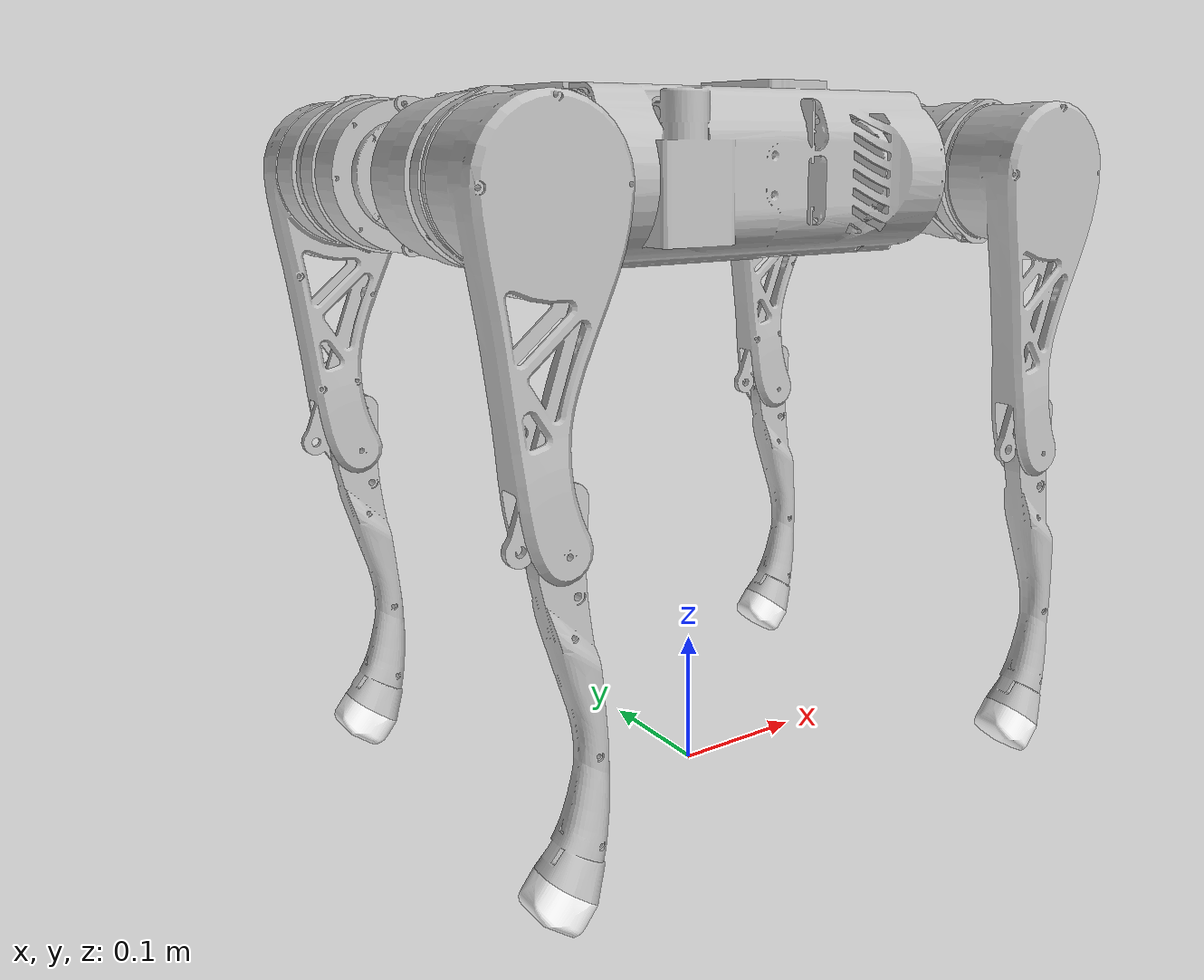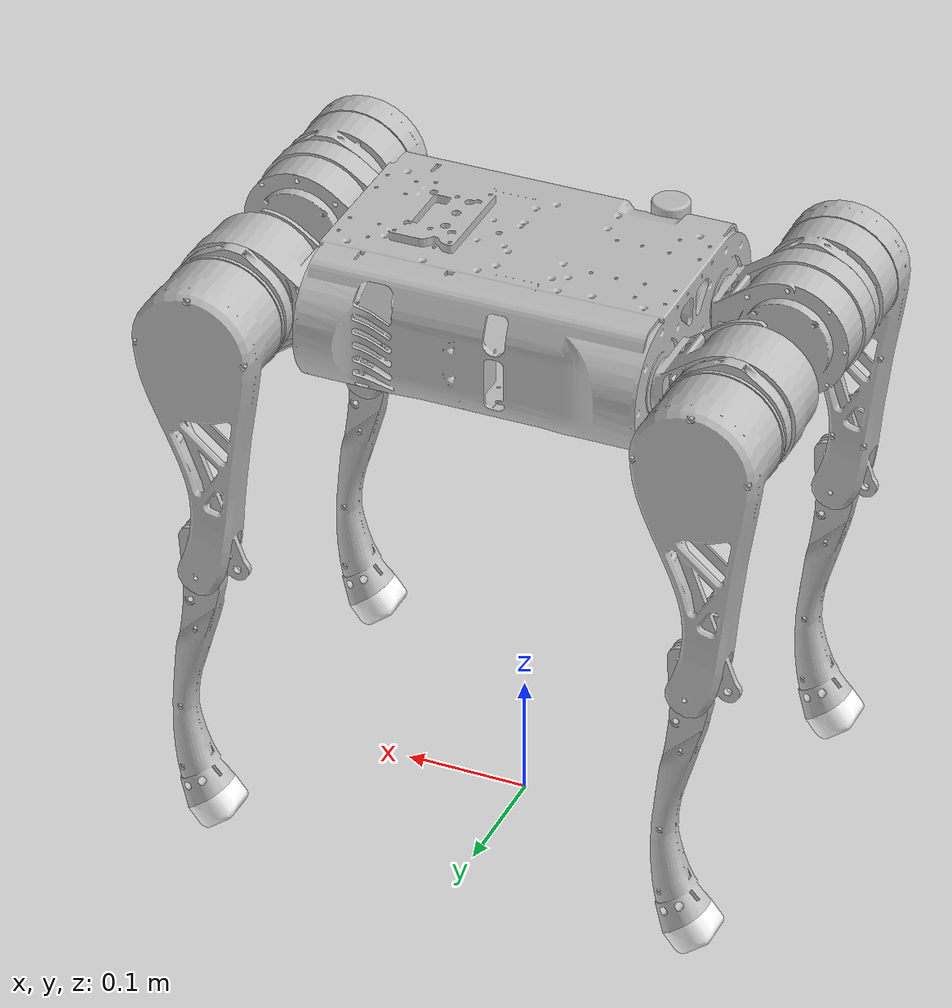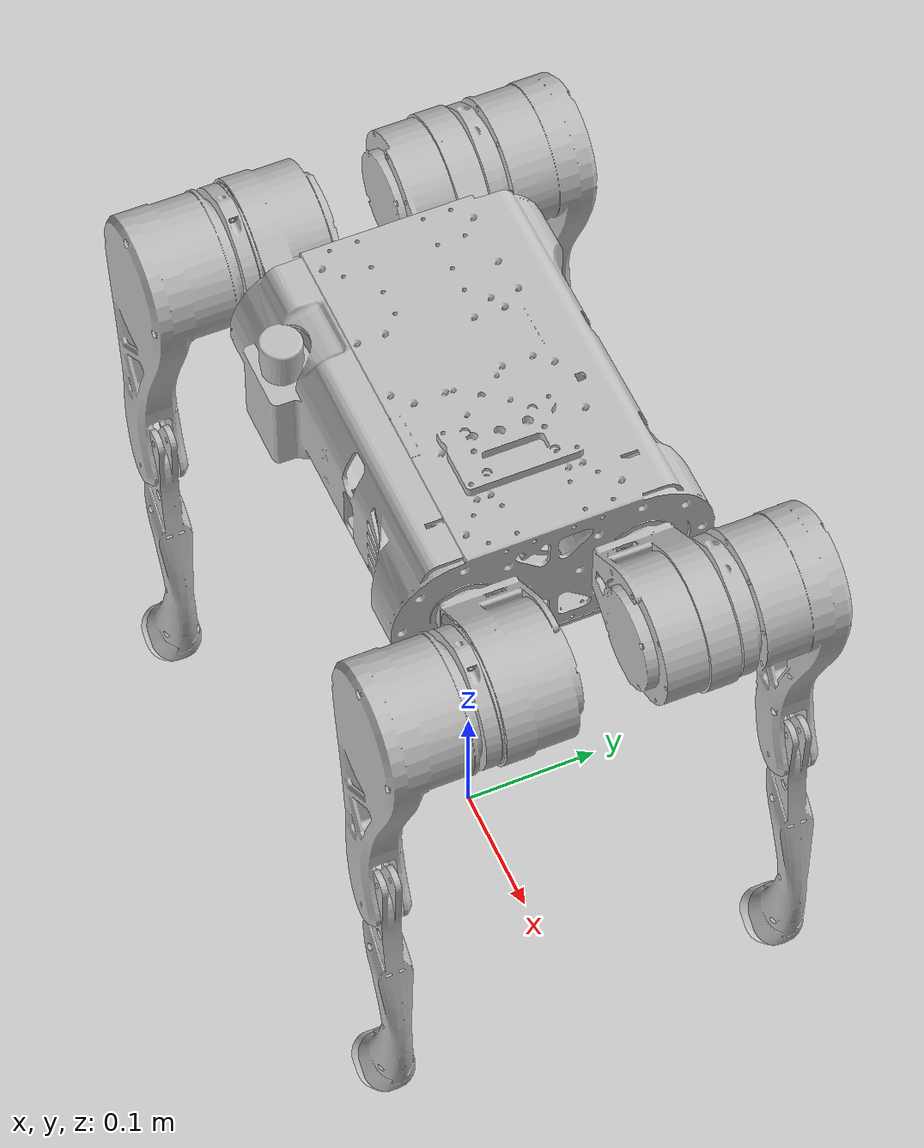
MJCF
<mujoco model="TOE_dog4.5">
  <compiler angle="radian" meshdir="../stl" autolimits="true" />

  <option cone="elliptic" impratio="100" />

  <default>
    <default class="dog">
      <geom friction="0.4" margin="0.001" condim="1"/>
      <joint axis="0 1 0" damping="0.1" armature="0.01" frictionloss="0.2"/>
      <motor ctrlrange="-20 20"/>
      <default class="abduction">
        <joint axis="1 0 0" range="-1 1"/>
      </default>
      <default class="hip">
        <joint range="-1.5 2.5"/>
      </default>
      <default class="knee">
        <joint range="-2.7 -0.8"/>
        <motor ctrlrange="-30 30"/>
      </default>
      <default class="visual">
        <geom type="mesh" contype="0" conaffinity="0" group="1"/>
      </default>
      <default class="collision">
        <geom group="3" contype="1" conaffinity="0"/>
        <default class="foot">
          <geom size="0.022" pos="-0.00129629 0 -0.21118" priority="1" condim="6" friction="0.9 0.02 0.01"/>
        </default>
      </default>
    </default>
  </default>

  <asset>
    <mesh name="base_link" file="base_link.STL"/>
    <mesh name="L_hip" file="L_hip.STL"/>
    <mesh name="L_thigh" file="L_thigh.STL"/>
    <mesh name="L_calf" file="L_calf.STL"/>
    <mesh name="foot" file="foot.STL"/>
    <mesh name="R_hip" file="R_hip.STL"/>
    <mesh name="R_thigh" file="R_thigh.STL"/>
    <mesh name="R_calf" file="R_calf.STL"/>
  </asset>

  <worldbody>
    <body name="base_link" pos="0 0 0.45" childclass="dog">
    <freejoint name="root"/>
    <inertial pos="0.00295211474088308 -0.00192758854859915 -0.0102792040045774" quat="-0.000543471 0.713435 -0.00173769 0.700719"
        mass="5.835083" diaginertia="0.068111 0.056604 0.025133" />
    <geom pos="-0.19 0.1154 -0.09" quat="0.707388 0 0 -0.706825" type="mesh" density="0" rgba="0.752941 0.752941 0.752941 1" mesh="base_link" contype="0" conaffinity="0" group="1"/>

    <geom size="0.135 0.115 0.06" type="box" rgba="1 1 1 1" class="collision"/>

    <site name='imu' size='0.01' pos='0.0 0 0.0'/>

    <body name="FL_hip" pos="0.2 0.05655 0">
      <inertial pos="-0.0070649 0.00658511 0.000124398" quat="0.495949 0.477547 0.517443 0.508169" mass="0.905192" diaginertia="0.00122102 0.00104387 0.000894103"/>
      <joint name="FL_hip_joint" pos="0 0 0" axis="1 0 0" range="-1 1" actuatorfrcrange="-20 20"/>
      <geom type="mesh" density="0" rgba="0.752941 0.752941 0.752941 1" mesh="L_hip" class="visual"/>
      <geom size="0.047 0.045" pos="0 0.05 0" quat="0.707107 0.707107 0 0" type="capsule" rgba="0.752941 0.752941 0.752941 1" class="collision"/>
      <body name="FL_thigh" pos="0 0.09375 0">
        <inertial pos="-0.00135206 -0.0159552 -0.030433" quat="0.699015 0.0668645 -0.0433449 0.710653" mass="1.1875" diaginertia="0.00485748 0.0046312 0.00105732"/>
        <joint name="FL_thigh_joint" pos="0 0 0" axis="0 1 0" range="-1.5 2.5" actuatorfrcrange="-20 20"/>
        <geom type="mesh" density="0" rgba="0.752941 0.752941 0.752941 1" mesh="L_thigh" class="visual"/>
        <geom size="0.055 0.01225 0.017" pos="0 0 -0.1065" quat="0.707107 0 0.707107 0" type="box" rgba="0.752941 0.752941 0.752941 1" class="collision"/>
        <body name="FL_calf" pos="0 0 -0.2">
          <inertial pos="0.006517 -0.000033 -0.106783" quat="1 0 0 0" mass="0.228394" diaginertia="0.00162529 0.00164186 0.00003857"/>
          <joint name="FL_calf_joint" pos="0 0 0" axis="0 1 0" range="-2.7 -0.8" actuatorfrcrange="-30 30"/>
          <geom type="mesh" density="0" rgba="0.752941 0.752941 0.752941 1" mesh="L_calf" class="visual"/>
          <geom size="0.012 0.06" pos="0.008 0 -0.05" quat="0.994493 0 -0.104807 0" type="capsule" rgba="0.752941 0.752941 0.752941 1" class="collision"/>
          <geom size="0.011 0.0325" pos="0.0198362 0 -0.138388" quat="0.999688 0 0.0249974 0" type="capsule" class="collision"/>
          <geom size="0.0155 0.015" pos="0.0134257 0 -0.182499" quat="0.965093 0 0.261909 0" type="capsule" class="collision"/>
          <geom pos="0.00070371 0 -0.21118" quat="1 0 0 0" type="mesh" density="0" rgba="1 1 1 1" mesh="foot" class="visual"/>
          <geom name="FL_foot" size="0.022" pos="-0.00129629 0 -0.21118" rgba="1 1 1 1" class="foot"/>
        </body>
      </body>
    </body>

    <body name="FR_hip" pos="0.2 -0.05655 0">
      <inertial pos="-0.0070649 -0.00658511 -0.000124398" quat="0.517443 0.508169 0.495949 0.477547" mass="0.905192" diaginertia="0.00122102 0.00104387 0.000894103"/>
      <joint name="FR_hip_joint" pos="0 0 0" axis="1 0 0" range="-1 1" actuatorfrcrange="-20 20"/>
      <geom quat="2.14617e-09 4.63268e-05 4.63268e-05 -1" type="mesh" density="0" rgba="0.752941 0.752941 0.752941 1" mesh="R_hip" class="visual"/>
      <geom size="0.047 0.045" pos="0 -0.05 0" quat="0.707107 0.707107 0 0" type="capsule" rgba="0.752941 0.752941 0.752941 1" class="collision"/>
      <body name="FR_thigh" pos="0 -0.09375 0">
        <inertial pos="-0.00109949 0.0159537 -0.0304843" quat="0.710653 -0.0433449 0.0668645 0.699015" mass="1.1875" diaginertia="0.00485748 0.0046312 0.00105732"/>
        <joint name="FR_thigh_joint" pos="0 0 0" axis="0 1 0" range="-1.5 2.5" actuatorfrcrange="-20 20"/>
        <geom type="mesh" density="0" rgba="0.752941 0.752941 0.752941 1" mesh="R_thigh" class="visual"/>
        <geom size="0.055 0.01225 0.017" pos="0 0 -0.1065" quat="0.707107 0 0.707107 0" type="box" rgba="0.752941 0.752941 0.752941 1" class="collision"/>
        <body name="FR_calf" pos="0 0 -0.2">
          <inertial pos="0.006517 -0.000033 -0.106783" quat="1 0 0 0" mass="0.228394" diaginertia="0.00162529 0.00164186 0.00003857"/>
          <joint name="FR_calf_joint" pos="0 0 0" axis="0 1 0" range="-2.7 -0.8" actuatorfrcrange="-30 30"/>
          <geom type="mesh" density="0" rgba="0.752941 0.752941 0.752941 1" mesh="R_calf" class="visual"/>
          <geom size="0.012 0.06" pos="0.008 0 -0.05" quat="0.994493 0 -0.104807 0" type="capsule" rgba="0.752941 0.752941 0.752941 1" class="collision"/>
          <geom size="0.011 0.0325" pos="0.020336 0 -0.1384" quat="0.999688 0 0.0249974 0" type="capsule" class="collision"/>
          <geom size="0.0155 0.015" pos="0.0161382 0 -0.182777" quat="0.971338 0 0.237703 0" type="capsule" class="collision"/>
          <geom pos="0.00070371 0 -0.21118" quat="1 0 0 0" type="mesh" density="0" rgba="1 1 1 1" mesh="foot" class="visual"/>
          <geom name="FR_foot" size="0.022" pos="-0.00129629 0 -0.21118" rgba="1 1 1 1" class="foot"/>
        </body>
      </body>
    </body>

    <body name="RL_hip" pos="-0.2 0.05655 0">
      <inertial pos="0.0070649 0.00658511 -0.000124398" quat="0.508169 0.517443 0.477547 0.495949" mass="0.905192" diaginertia="0.00122102 0.00104387 0.000894103"/>
      <joint name="RL_hip_joint" pos="0 0 0" axis="1 0 0" range="-1 1" actuatorfrcrange="-20 20"/>
      <geom quat="4.63268e-05 0 1 0" type="mesh" density="0" rgba="0.752941 0.752941 0.752941 1" mesh="L_hip" class="visual"/>
      <geom size="0.047 0.045" pos="0 0.05 0" quat="0.707107 0.707107 0 0" type="capsule" rgba="0.752941 0.752941 0.752941 1" class="collision"/>
      <body name="RL_thigh" pos="0 0.09375 0">
        <inertial pos="-0.00135206 -0.0159552 -0.030433" quat="0.699015 0.0668645 -0.0433449 0.710653" mass="1.1875" diaginertia="0.00485748 0.0046312 0.00105732"/>
        <joint name="RL_thigh_joint" pos="0 0 0" axis="0 1 0" range="-1.5 2.5" actuatorfrcrange="-20 20"/>
        <geom type="mesh" density="0" rgba="0.752941 0.752941 0.752941 1" mesh="L_thigh" class="visual"/>
        <geom size="0.055 0.01225 0.017" pos="0 0 -0.1065" quat="0.707107 0 0.707107 0" type="box" rgba="0.752941 0.752941 0.752941 1" class="collision"/>
        <body name="RL_calf" pos="0 0 -0.2">
          <inertial pos="0.006517 -0.000033 -0.106783" quat="1 0 0 0" mass="0.228394" diaginertia="0.00162529 0.00164186 0.00003857"/>
          <joint name="RL_calf_joint" pos="0 0 0" axis="0 1 0" range="-2.7 -0.8" actuatorfrcrange="-30 30"/>
          <geom type="mesh" density="0" rgba="0.752941 0.752941 0.752941 1" mesh="L_calf" class="visual"/>
          <geom size="0.012 0.06" pos="0.008 0 -0.05" quat="0.994493 0 -0.104807 0" type="capsule" rgba="0.752941 0.752941 0.752941 1" class="collision"/>
          <geom size="0.011 0.0325" pos="0.020336 0 -0.1384" quat="0.999688 0 0.0249974 0" type="capsule" class="collision"/>
          <geom size="0.0155 0.015" pos="0.0161382 0 -0.182777" quat="0.971338 0 0.237703 0" type="capsule" class="collision"/>
          <geom pos="0.00070371 0 -0.21118" quat="1 0 0 0" type="mesh" density="0" rgba="1 1 1 1" mesh="foot" class="visual"/>
          <geom name="RL_foot" size="0.022" pos="-0.00129629 0 -0.21118" rgba="1 1 1 1" class="foot"/>
        </body>
      </body>
    </body>

    <body name="RR_hip" pos="-0.2 -0.05655 0">
      <inertial pos="0.0070649 -0.00658511 0.000124398" quat="0.477547 0.495949 0.508169 0.517443" mass="0.905192" diaginertia="0.00122102 0.00104387 0.000894103"/>
      <joint name="RR_hip_joint" pos="0 0 0" axis="1 0 0" range="-1 1" actuatorfrcrange="-20 20"/>
      <geom quat="4.63268e-05 1 0 0" type="mesh" density="0" rgba="0.752941 0.752941 0.752941 1" mesh="R_hip" class="visual"/>
      <geom size="0.047 0.045" pos="0 -0.05 0" quat="0.707107 0.707107 0 0" type="capsule" rgba="0.752941 0.752941 0.752941 1" class="collision"/>
      <body name="RR_thigh" pos="0 -0.09375 0">
        <inertial pos="-0.00109949 0.0159537 -0.0304843" quat="0.710653 -0.0433449 0.0668645 0.699015" mass="1.1875" diaginertia="0.00485748 0.0046312 0.00105732"/>
        <joint name="RR_thigh_joint" pos="0 0 0" axis="0 1 0" range="-1.5 2.5" actuatorfrcrange="-20 20"/>
        <geom type="mesh" density="0" rgba="0.752941 0.752941 0.752941 1" mesh="R_thigh" class="visual"/>
        <geom size="0.055 0.01225 0.017" pos="0 0 -0.1065" quat="0.707107 0 0.707107 0" type="box" rgba="0.752941 0.752941 0.752941 1" class="collision"/>
        <body name="RR_calf" pos="0 0 -0.2">
          <inertial pos="0.006517 -0.000033 -0.106783" quat="1 0 0 0" mass="0.228394" diaginertia="0.00162529 0.00164186 0.00003857"/>
          <joint name="RR_calf_joint" pos="0 0 0" axis="0 1 0" range="-2.7 -0.8" actuatorfrcrange="-30 30"/>
          <geom type="mesh" density="0" rgba="0.752941 0.752941 0.752941 1" mesh="R_calf" class="visual"/>
          <geom size="0.012 0.06" pos="0.008 0 -0.05" quat="0.994493 0 -0.104807 0" type="capsule" rgba="0.752941 0.752941 0.752941 1" class="collision"/>
          <geom size="0.011 0.0325" pos="0.020336 0 -0.1384" quat="0.999688 0 0.0249974 0" type="capsule" class="collision"/>
          <geom size="0.0155 0.015" pos="0.0161382 0 -0.182777" quat="0.971338 0 0.237703 0" type="capsule" class="collision"/>
          <geom pos="0.00070371 0 -0.21118" quat="1 0 0 0" type="mesh" density="0" rgba="1 1 1 1" mesh="foot" class="visual"/>
          <geom name="RR_foot" size="0.022" pos="-0.00129629 0 -0.21118" rgba="1 1 1 1" class="foot"/>
        </body>
      </body>
    </body>

    </body>
  </worldbody>

  <actuator>
    <motor name="FL_hip_joint" joint="FL_hip_joint" gear="1" ctrllimited="true" ctrlrange="-20 20"/>
    <motor name="FL_thigh_joint" joint="FL_thigh_joint" gear="1" ctrllimited="true" ctrlrange="-20 20"/>
    <motor name="FL_calf_joint" joint="FL_calf_joint" gear="1" ctrllimited="true" ctrlrange="-30 30"/>

    <motor name="FR_hip_joint" joint="FR_hip_joint" gear="1" ctrllimited="true" ctrlrange="-20 20"/>
    <motor name="FR_thigh_joint" joint="FR_thigh_joint" gear="1" ctrllimited="true" ctrlrange="-20 20"/>
    <motor name="FR_calf_joint" joint="FR_calf_joint" gear="1" ctrllimited="true" ctrlrange="-30 30"/>

    <motor name="RL_hip_joint" joint="RL_hip_joint" gear="1" ctrllimited="true" ctrlrange="-20 20"/>
    <motor name="RL_thigh_joint" joint="RL_thigh_joint" gear="1" ctrllimited="true" ctrlrange="-20 20"/>
    <motor name="RL_calf_joint" joint="RL_calf_joint" gear="1" ctrllimited="true" ctrlrange="-30 30"/>

    <motor name="RR_hip_joint" joint="RR_hip_joint" gear="1" ctrllimited="true" ctrlrange="-20 20"/>
    <motor name="RR_thigh_joint" joint="RR_thigh_joint" gear="1" ctrllimited="true" ctrlrange="-20 20"/>
    <motor name="RR_calf_joint" joint="RR_calf_joint" gear="1" ctrllimited="true" ctrlrange="-30 30"/>
  </actuator>

  <sensor>
    <jointpos name="FL_hip_pos" joint="FL_hip_joint" />
    <jointpos name="FL_thigh_pos" joint="FL_thigh_joint" />
    <jointpos name="FL_calf_pos" joint="FL_calf_joint" />
    <jointpos name="FR_hip_pos" joint="FR_hip_joint" />
    <jointpos name="FR_thigh_pos" joint="FR_thigh_joint" />
    <jointpos name="FR_calf_pos" joint="FR_calf_joint" />
    <jointpos name="RL_hip_pos" joint="RL_hip_joint" />
    <jointpos name="RL_thigh_pos" joint="RL_thigh_joint" />
    <jointpos name="RL_calf_pos" joint="RL_calf_joint" />
    <jointpos name="RR_hip_pos" joint="RR_hip_joint" />
    <jointpos name="RR_thigh_pos" joint="RR_thigh_joint" />
    <jointpos name="RR_calf_pos" joint="RR_calf_joint" />

    <jointvel name="FL_hip_vel" joint="FL_hip_joint" />
    <jointvel name="FL_thigh_vel" joint="FL_thigh_joint" />
    <jointvel name="FL_calf_vel" joint="FL_calf_joint" />
    <jointvel name="FR_hip_vel" joint="FR_hip_joint" />
    <jointvel name="FR_thigh_vel" joint="FR_thigh_joint" />
    <jointvel name="FR_calf_vel" joint="FR_calf_joint" />
    <jointvel name="RL_hip_vel" joint="RL_hip_joint" />
    <jointvel name="RL_thigh_vel" joint="RL_thigh_joint" />
    <jointvel name="RL_calf_vel" joint="RL_calf_joint" />
    <jointvel name="RR_hip_vel" joint="RR_hip_joint" />
    <jointvel name="RR_thigh_vel" joint="RR_thigh_joint" />
    <jointvel name="RR_calf_vel" joint="RR_calf_joint" />

    <jointactuatorfrc name="FL_hip_torque" joint="FL_hip_joint" noise="0.01" />
    <jointactuatorfrc name="FL_thigh_torque" joint="FL_thigh_joint" noise="0.01" />
    <jointactuatorfrc name="FL_calf_torque" joint="FL_calf_joint" noise="0.01" />
    <jointactuatorfrc name="FR_hip_torque" joint="FR_hip_joint" noise="0.01" />
    <jointactuatorfrc name="FR_thigh_torque" joint="FR_thigh_joint" noise="0.01" />
    <jointactuatorfrc name="FR_calf_torque" joint="FR_calf_joint" noise="0.01" />
    <jointactuatorfrc name="RL_hip_torque" joint="RL_hip_joint" noise="0.01" />
    <jointactuatorfrc name="RL_thigh_torque" joint="RL_thigh_joint" noise="0.01" />
    <jointactuatorfrc name="RL_calf_torque" joint="RL_calf_joint" noise="0.01" />
    <jointactuatorfrc name="RR_hip_torque" joint="RR_hip_joint" noise="0.01" />
    <jointactuatorfrc name="RR_thigh_torque" joint="RR_thigh_joint" noise="0.01" />
    <jointactuatorfrc name="RR_calf_torque" joint="RR_calf_joint" noise="0.01" />

    <framequat     name='orientation' objtype='site' noise='0.001' objname='imu'/>
    <framepos      name='position' objtype='site' noise='0.001' objname='imu'/>
    <framelinvel  name="base_lin_vel" objtype="site" objname="imu" />
    <gyro          name='angular-velocity'    site='imu' noise='0.005' cutoff='34.9'/>
    <velocimeter   name='linear-velocity'     site='imu' noise='0.001' cutoff='30'/>
    <accelerometer name='linear-acceleration' site='imu' noise='0.005' cutoff='157'/>
    <magnetometer  name='magnetometer'        site='imu'/>
  </sensor>

  <keyframe>
    <key name="home" qpos="0 0 0.27 1 0 0 0 0 0.9 -1.8 0 0.9 -1.8 0 0.9 -1.8 0 0.9 -1.8"
      ctrl="0 0.9 -1.8 0 0.9 -1.8 0 0.9 -1.8 0 0.9 -1.8" />
  </keyframe>
</mujoco>
